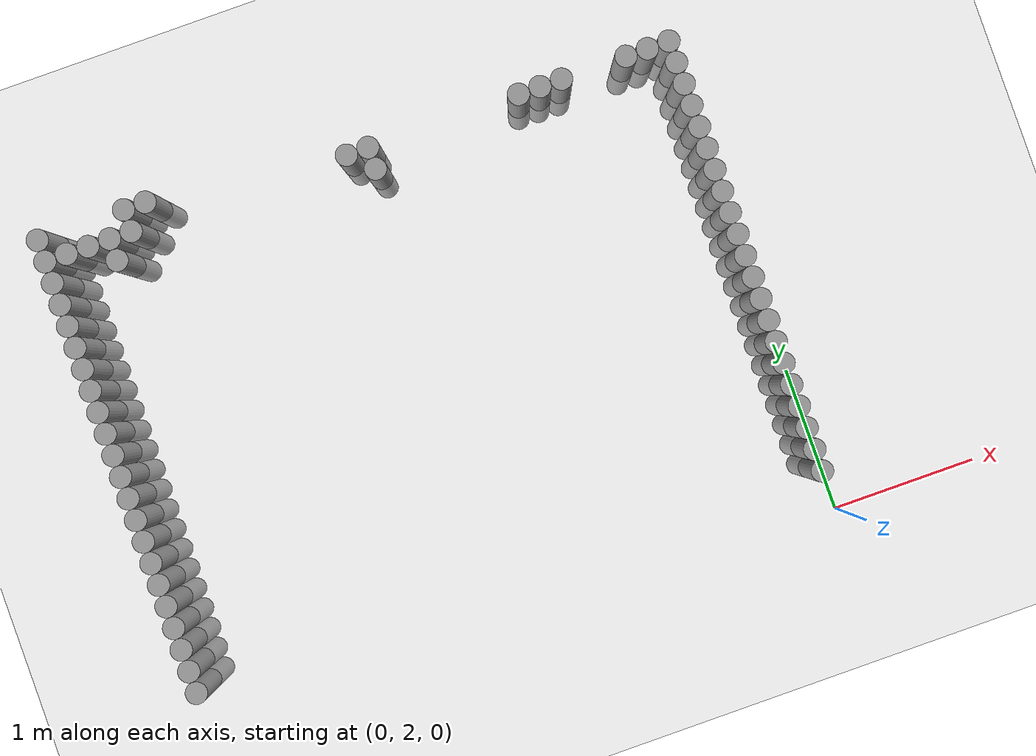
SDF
<sdf version="1.6">
 <world name="default">
  <model name="ground_plane">
   <static>1</static>
   <link name="link">
    <collision name="collision">
     <geometry><plane><normal>0 0 1</normal><size>100 100</size></plane></geometry>
     <surface><friction><ode><mu>100</mu><mu2>50</mu2></ode></friction></surface>
    </collision>
    <visual name="visual">
     <cast_shadows>0</cast_shadows>
     <geometry><plane><normal>0 0 1</normal><size>100 100</size></plane></geometry>
     <material>
      <script><uri>file://media/materials/scripts/gazebo.material</uri><name>Gazebo/Grey</name></script>
     </material>
    </visual>
   </link>
  </model>
  <model name="unit_cylinder_58">
   <pose>-0.075000 2.325000 0.000000 0.000000 0.000000 0.000000</pose>
   <link name="link">
    <inertial>
     <mass>1</mass>
     <inertia><ixx>0.145833</ixx><ixy>0</ixy><ixz>0</ixz><iyy>0.145833</iyy><iyz>0</iyz><izz>0.125</izz></inertia>
    </inertial>
    <collision name="collision">
     <geometry><cylinder><radius>0.075000</radius><length>1</length></cylinder></geometry>
    </collision>
    <visual name="visual">
     <geometry><cylinder><radius>0.075000</radius><length>1</length></cylinder></geometry>
     <material>
      <script><name>Gazebo/Grey</name><uri>file://media/materials/scripts/gazebo.material</uri></script>
     </material>
    </visual>
   </link>
  </model>
  <model name="unit_cylinder_59">
   <pose>-4.425000 2.325000 0.000000 0.000000 0.000000 0.000000</pose>
   <link name="link">
    <inertial>
     <mass>1</mass>
     <inertia><ixx>0.145833</ixx><ixy>0</ixy><ixz>0</ixz><iyy>0.145833</iyy><iyz>0</iyz><izz>0.125</izz></inertia>
    </inertial>
    <collision name="collision">
     <geometry><cylinder><radius>0.075000</radius><length>1</length></cylinder></geometry>
    </collision>
    <visual name="visual">
     <geometry><cylinder><radius>0.075000</radius><length>1</length></cylinder></geometry>
     <material>
      <script><name>Gazebo/Grey</name><uri>file://media/materials/scripts/gazebo.material</uri></script>
     </material>
    </visual>
   </link>
  </model>
  <model name="unit_cylinder_60">
   <pose>-0.075000 2.475000 0.000000 0.000000 0.000000 0.000000</pose>
   <link name="link">
    <inertial>
     <mass>1</mass>
     <inertia><ixx>0.145833</ixx><ixy>0</ixy><ixz>0</ixz><iyy>0.145833</iyy><iyz>0</iyz><izz>0.125</izz></inertia>
    </inertial>
    <collision name="collision">
     <geometry><cylinder><radius>0.075000</radius><length>1</length></cylinder></geometry>
    </collision>
    <visual name="visual">
     <geometry><cylinder><radius>0.075000</radius><length>1</length></cylinder></geometry>
     <material>
      <script><name>Gazebo/Grey</name><uri>file://media/materials/scripts/gazebo.material</uri></script>
     </material>
    </visual>
   </link>
  </model>
  <model name="unit_cylinder_61">
   <pose>-4.425000 2.475000 0.000000 0.000000 0.000000 0.000000</pose>
   <link name="link">
    <inertial>
     <mass>1</mass>
     <inertia><ixx>0.145833</ixx><ixy>0</ixy><ixz>0</ixz><iyy>0.145833</iyy><iyz>0</iyz><izz>0.125</izz></inertia>
    </inertial>
    <collision name="collision">
     <geometry><cylinder><radius>0.075000</radius><length>1</length></cylinder></geometry>
    </collision>
    <visual name="visual">
     <geometry><cylinder><radius>0.075000</radius><length>1</length></cylinder></geometry>
     <material>
      <script><name>Gazebo/Grey</name><uri>file://media/materials/scripts/gazebo.material</uri></script>
     </material>
    </visual>
   </link>
  </model>
  <model name="unit_cylinder_62">
   <pose>-0.075000 2.625000 0.000000 0.000000 0.000000 0.000000</pose>
   <link name="link">
    <inertial>
     <mass>1</mass>
     <inertia><ixx>0.145833</ixx><ixy>0</ixy><ixz>0</ixz><iyy>0.145833</iyy><iyz>0</iyz><izz>0.125</izz></inertia>
    </inertial>
    <collision name="collision">
     <geometry><cylinder><radius>0.075000</radius><length>1</length></cylinder></geometry>
    </collision>
    <visual name="visual">
     <geometry><cylinder><radius>0.075000</radius><length>1</length></cylinder></geometry>
     <material>
      <script><name>Gazebo/Grey</name><uri>file://media/materials/scripts/gazebo.material</uri></script>
     </material>
    </visual>
   </link>
  </model>
  <model name="unit_cylinder_63">
   <pose>-4.425000 2.625000 0.000000 0.000000 0.000000 0.000000</pose>
   <link name="link">
    <inertial>
     <mass>1</mass>
     <inertia><ixx>0.145833</ixx><ixy>0</ixy><ixz>0</ixz><iyy>0.145833</iyy><iyz>0</iyz><izz>0.125</izz></inertia>
    </inertial>
    <collision name="collision">
     <geometry><cylinder><radius>0.075000</radius><length>1</length></cylinder></geometry>
    </collision>
    <visual name="visual">
     <geometry><cylinder><radius>0.075000</radius><length>1</length></cylinder></geometry>
     <material>
      <script><name>Gazebo/Grey</name><uri>file://media/materials/scripts/gazebo.material</uri></script>
     </material>
    </visual>
   </link>
  </model>
  <model name="unit_cylinder_64">
   <pose>-0.075000 2.775000 0.000000 0.000000 0.000000 0.000000</pose>
   <link name="link">
    <inertial>
     <mass>1</mass>
     <inertia><ixx>0.145833</ixx><ixy>0</ixy><ixz>0</ixz><iyy>0.145833</iyy><iyz>0</iyz><izz>0.125</izz></inertia>
    </inertial>
    <collision name="collision">
     <geometry><cylinder><radius>0.075000</radius><length>1</length></cylinder></geometry>
    </collision>
    <visual name="visual">
     <geometry><cylinder><radius>0.075000</radius><length>1</length></cylinder></geometry>
     <material>
      <script><name>Gazebo/Grey</name><uri>file://media/materials/scripts/gazebo.material</uri></script>
     </material>
    </visual>
   </link>
  </model>
  <model name="unit_cylinder_65">
   <pose>-4.425000 2.775000 0.000000 0.000000 0.000000 0.000000</pose>
   <link name="link">
    <inertial>
     <mass>1</mass>
     <inertia><ixx>0.145833</ixx><ixy>0</ixy><ixz>0</ixz><iyy>0.145833</iyy><iyz>0</iyz><izz>0.125</izz></inertia>
    </inertial>
    <collision name="collision">
     <geometry><cylinder><radius>0.075000</radius><length>1</length></cylinder></geometry>
    </collision>
    <visual name="visual">
     <geometry><cylinder><radius>0.075000</radius><length>1</length></cylinder></geometry>
     <material>
      <script><name>Gazebo/Grey</name><uri>file://media/materials/scripts/gazebo.material</uri></script>
     </material>
    </visual>
   </link>
  </model>
  <model name="unit_cylinder_66">
   <pose>-0.075000 2.925000 0.000000 0.000000 0.000000 0.000000</pose>
   <link name="link">
    <inertial>
     <mass>1</mass>
     <inertia><ixx>0.145833</ixx><ixy>0</ixy><ixz>0</ixz><iyy>0.145833</iyy><iyz>0</iyz><izz>0.125</izz></inertia>
    </inertial>
    <collision name="collision">
     <geometry><cylinder><radius>0.075000</radius><length>1</length></cylinder></geometry>
    </collision>
    <visual name="visual">
     <geometry><cylinder><radius>0.075000</radius><length>1</length></cylinder></geometry>
     <material>
      <script><name>Gazebo/Grey</name><uri>file://media/materials/scripts/gazebo.material</uri></script>
     </material>
    </visual>
   </link>
  </model>
  <model name="unit_cylinder_67">
   <pose>-4.425000 2.925000 0.000000 0.000000 0.000000 0.000000</pose>
   <link name="link">
    <inertial>
     <mass>1</mass>
     <inertia><ixx>0.145833</ixx><ixy>0</ixy><ixz>0</ixz><iyy>0.145833</iyy><iyz>0</iyz><izz>0.125</izz></inertia>
    </inertial>
    <collision name="collision">
     <geometry><cylinder><radius>0.075000</radius><length>1</length></cylinder></geometry>
    </collision>
    <visual name="visual">
     <geometry><cylinder><radius>0.075000</radius><length>1</length></cylinder></geometry>
     <material>
      <script><name>Gazebo/Grey</name><uri>file://media/materials/scripts/gazebo.material</uri></script>
     </material>
    </visual>
   </link>
  </model>
  <model name="unit_cylinder_68">
   <pose>-0.075000 3.075000 0.000000 0.000000 0.000000 0.000000</pose>
   <link name="link">
    <inertial>
     <mass>1</mass>
     <inertia><ixx>0.145833</ixx><ixy>0</ixy><ixz>0</ixz><iyy>0.145833</iyy><iyz>0</iyz><izz>0.125</izz></inertia>
    </inertial>
    <collision name="collision">
     <geometry><cylinder><radius>0.075000</radius><length>1</length></cylinder></geometry>
    </collision>
    <visual name="visual">
     <geometry><cylinder><radius>0.075000</radius><length>1</length></cylinder></geometry>
     <material>
      <script><name>Gazebo/Grey</name><uri>file://media/materials/scripts/gazebo.material</uri></script>
     </material>
    </visual>
   </link>
  </model>
  <model name="unit_cylinder_69">
   <pose>-4.425000 3.075000 0.000000 0.000000 0.000000 0.000000</pose>
   <link name="link">
    <inertial>
     <mass>1</mass>
     <inertia><ixx>0.145833</ixx><ixy>0</ixy><ixz>0</ixz><iyy>0.145833</iyy><iyz>0</iyz><izz>0.125</izz></inertia>
    </inertial>
    <collision name="collision">
     <geometry><cylinder><radius>0.075000</radius><length>1</length></cylinder></geometry>
    </collision>
    <visual name="visual">
     <geometry><cylinder><radius>0.075000</radius><length>1</length></cylinder></geometry>
     <material>
      <script><name>Gazebo/Grey</name><uri>file://media/materials/scripts/gazebo.material</uri></script>
     </material>
    </visual>
   </link>
  </model>
  <model name="unit_cylinder_70">
   <pose>-0.075000 3.225000 0.000000 0.000000 0.000000 0.000000</pose>
   <link name="link">
    <inertial>
     <mass>1</mass>
     <inertia><ixx>0.145833</ixx><ixy>0</ixy><ixz>0</ixz><iyy>0.145833</iyy><iyz>0</iyz><izz>0.125</izz></inertia>
    </inertial>
    <collision name="collision">
     <geometry><cylinder><radius>0.075000</radius><length>1</length></cylinder></geometry>
    </collision>
    <visual name="visual">
     <geometry><cylinder><radius>0.075000</radius><length>1</length></cylinder></geometry>
     <material>
      <script><name>Gazebo/Grey</name><uri>file://media/materials/scripts/gazebo.material</uri></script>
     </material>
    </visual>
   </link>
  </model>
  <model name="unit_cylinder_71">
   <pose>-4.425000 3.225000 0.000000 0.000000 0.000000 0.000000</pose>
   <link name="link">
    <inertial>
     <mass>1</mass>
     <inertia><ixx>0.145833</ixx><ixy>0</ixy><ixz>0</ixz><iyy>0.145833</iyy><iyz>0</iyz><izz>0.125</izz></inertia>
    </inertial>
    <collision name="collision">
     <geometry><cylinder><radius>0.075000</radius><length>1</length></cylinder></geometry>
    </collision>
    <visual name="visual">
     <geometry><cylinder><radius>0.075000</radius><length>1</length></cylinder></geometry>
     <material>
      <script><name>Gazebo/Grey</name><uri>file://media/materials/scripts/gazebo.material</uri></script>
     </material>
    </visual>
   </link>
  </model>
  <model name="unit_cylinder_72">
   <pose>-0.075000 3.375000 0.000000 0.000000 0.000000 0.000000</pose>
   <link name="link">
    <inertial>
     <mass>1</mass>
     <inertia><ixx>0.145833</ixx><ixy>0</ixy><ixz>0</ixz><iyy>0.145833</iyy><iyz>0</iyz><izz>0.125</izz></inertia>
    </inertial>
    <collision name="collision">
     <geometry><cylinder><radius>0.075000</radius><length>1</length></cylinder></geometry>
    </collision>
    <visual name="visual">
     <geometry><cylinder><radius>0.075000</radius><length>1</length></cylinder></geometry>
     <material>
      <script><name>Gazebo/Grey</name><uri>file://media/materials/scripts/gazebo.material</uri></script>
     </material>
    </visual>
   </link>
  </model>
  <model name="unit_cylinder_73">
   <pose>-4.425000 3.375000 0.000000 0.000000 0.000000 0.000000</pose>
   <link name="link">
    <inertial>
     <mass>1</mass>
     <inertia><ixx>0.145833</ixx><ixy>0</ixy><ixz>0</ixz><iyy>0.145833</iyy><iyz>0</iyz><izz>0.125</izz></inertia>
    </inertial>
    <collision name="collision">
     <geometry><cylinder><radius>0.075000</radius><length>1</length></cylinder></geometry>
    </collision>
    <visual name="visual">
     <geometry><cylinder><radius>0.075000</radius><length>1</length></cylinder></geometry>
     <material>
      <script><name>Gazebo/Grey</name><uri>file://media/materials/scripts/gazebo.material</uri></script>
     </material>
    </visual>
   </link>
  </model>
  <model name="unit_cylinder_74">
   <pose>-0.075000 3.525000 0.000000 0.000000 0.000000 0.000000</pose>
   <link name="link">
    <inertial>
     <mass>1</mass>
     <inertia><ixx>0.145833</ixx><ixy>0</ixy><ixz>0</ixz><iyy>0.145833</iyy><iyz>0</iyz><izz>0.125</izz></inertia>
    </inertial>
    <collision name="collision">
     <geometry><cylinder><radius>0.075000</radius><length>1</length></cylinder></geometry>
    </collision>
    <visual name="visual">
     <geometry><cylinder><radius>0.075000</radius><length>1</length></cylinder></geometry>
     <material>
      <script><name>Gazebo/Grey</name><uri>file://media/materials/scripts/gazebo.material</uri></script>
     </material>
    </visual>
   </link>
  </model>
  <model name="unit_cylinder_75">
   <pose>-4.425000 3.525000 0.000000 0.000000 0.000000 0.000000</pose>
   <link name="link">
    <inertial>
     <mass>1</mass>
     <inertia><ixx>0.145833</ixx><ixy>0</ixy><ixz>0</ixz><iyy>0.145833</iyy><iyz>0</iyz><izz>0.125</izz></inertia>
    </inertial>
    <collision name="collision">
     <geometry><cylinder><radius>0.075000</radius><length>1</length></cylinder></geometry>
    </collision>
    <visual name="visual">
     <geometry><cylinder><radius>0.075000</radius><length>1</length></cylinder></geometry>
     <material>
      <script><name>Gazebo/Grey</name><uri>file://media/materials/scripts/gazebo.material</uri></script>
     </material>
    </visual>
   </link>
  </model>
  <model name="unit_cylinder_76">
   <pose>-0.075000 3.675000 0.000000 0.000000 0.000000 0.000000</pose>
   <link name="link">
    <inertial>
     <mass>1</mass>
     <inertia><ixx>0.145833</ixx><ixy>0</ixy><ixz>0</ixz><iyy>0.145833</iyy><iyz>0</iyz><izz>0.125</izz></inertia>
    </inertial>
    <collision name="collision">
     <geometry><cylinder><radius>0.075000</radius><length>1</length></cylinder></geometry>
    </collision>
    <visual name="visual">
     <geometry><cylinder><radius>0.075000</radius><length>1</length></cylinder></geometry>
     <material>
      <script><name>Gazebo/Grey</name><uri>file://media/materials/scripts/gazebo.material</uri></script>
     </material>
    </visual>
   </link>
  </model>
  <model name="unit_cylinder_77">
   <pose>-4.425000 3.675000 0.000000 0.000000 0.000000 0.000000</pose>
   <link name="link">
    <inertial>
     <mass>1</mass>
     <inertia><ixx>0.145833</ixx><ixy>0</ixy><ixz>0</ixz><iyy>0.145833</iyy><iyz>0</iyz><izz>0.125</izz></inertia>
    </inertial>
    <collision name="collision">
     <geometry><cylinder><radius>0.075000</radius><length>1</length></cylinder></geometry>
    </collision>
    <visual name="visual">
     <geometry><cylinder><radius>0.075000</radius><length>1</length></cylinder></geometry>
     <material>
      <script><name>Gazebo/Grey</name><uri>file://media/materials/scripts/gazebo.material</uri></script>
     </material>
    </visual>
   </link>
  </model>
  <model name="unit_cylinder_78">
   <pose>-0.075000 3.825000 0.000000 0.000000 0.000000 0.000000</pose>
   <link name="link">
    <inertial>
     <mass>1</mass>
     <inertia><ixx>0.145833</ixx><ixy>0</ixy><ixz>0</ixz><iyy>0.145833</iyy><iyz>0</iyz><izz>0.125</izz></inertia>
    </inertial>
    <collision name="collision">
     <geometry><cylinder><radius>0.075000</radius><length>1</length></cylinder></geometry>
    </collision>
    <visual name="visual">
     <geometry><cylinder><radius>0.075000</radius><length>1</length></cylinder></geometry>
     <material>
      <script><name>Gazebo/Grey</name><uri>file://media/materials/scripts/gazebo.material</uri></script>
     </material>
    </visual>
   </link>
  </model>
  <model name="unit_cylinder_79">
   <pose>-4.425000 3.825000 0.000000 0.000000 0.000000 0.000000</pose>
   <link name="link">
    <inertial>
     <mass>1</mass>
     <inertia><ixx>0.145833</ixx><ixy>0</ixy><ixz>0</ixz><iyy>0.145833</iyy><iyz>0</iyz><izz>0.125</izz></inertia>
    </inertial>
    <collision name="collision">
     <geometry><cylinder><radius>0.075000</radius><length>1</length></cylinder></geometry>
    </collision>
    <visual name="visual">
     <geometry><cylinder><radius>0.075000</radius><length>1</length></cylinder></geometry>
     <material>
      <script><name>Gazebo/Grey</name><uri>file://media/materials/scripts/gazebo.material</uri></script>
     </material>
    </visual>
   </link>
  </model>
  <model name="unit_cylinder_80">
   <pose>-0.075000 3.975000 0.000000 0.000000 0.000000 0.000000</pose>
   <link name="link">
    <inertial>
     <mass>1</mass>
     <inertia><ixx>0.145833</ixx><ixy>0</ixy><ixz>0</ixz><iyy>0.145833</iyy><iyz>0</iyz><izz>0.125</izz></inertia>
    </inertial>
    <collision name="collision">
     <geometry><cylinder><radius>0.075000</radius><length>1</length></cylinder></geometry>
    </collision>
    <visual name="visual">
     <geometry><cylinder><radius>0.075000</radius><length>1</length></cylinder></geometry>
     <material>
      <script><name>Gazebo/Grey</name><uri>file://media/materials/scripts/gazebo.material</uri></script>
     </material>
    </visual>
   </link>
  </model>
  <model name="unit_cylinder_81">
   <pose>-4.425000 3.975000 0.000000 0.000000 0.000000 0.000000</pose>
   <link name="link">
    <inertial>
     <mass>1</mass>
     <inertia><ixx>0.145833</ixx><ixy>0</ixy><ixz>0</ixz><iyy>0.145833</iyy><iyz>0</iyz><izz>0.125</izz></inertia>
    </inertial>
    <collision name="collision">
     <geometry><cylinder><radius>0.075000</radius><length>1</length></cylinder></geometry>
    </collision>
    <visual name="visual">
     <geometry><cylinder><radius>0.075000</radius><length>1</length></cylinder></geometry>
     <material>
      <script><name>Gazebo/Grey</name><uri>file://media/materials/scripts/gazebo.material</uri></script>
     </material>
    </visual>
   </link>
  </model>
  <model name="unit_cylinder_82">
   <pose>-0.075000 4.125000 0.000000 0.000000 0.000000 0.000000</pose>
   <link name="link">
    <inertial>
     <mass>1</mass>
     <inertia><ixx>0.145833</ixx><ixy>0</ixy><ixz>0</ixz><iyy>0.145833</iyy><iyz>0</iyz><izz>0.125</izz></inertia>
    </inertial>
    <collision name="collision">
     <geometry><cylinder><radius>0.075000</radius><length>1</length></cylinder></geometry>
    </collision>
    <visual name="visual">
     <geometry><cylinder><radius>0.075000</radius><length>1</length></cylinder></geometry>
     <material>
      <script><name>Gazebo/Grey</name><uri>file://media/materials/scripts/gazebo.material</uri></script>
     </material>
    </visual>
   </link>
  </model>
  <model name="unit_cylinder_83">
   <pose>-4.425000 4.125000 0.000000 0.000000 0.000000 0.000000</pose>
   <link name="link">
    <inertial>
     <mass>1</mass>
     <inertia><ixx>0.145833</ixx><ixy>0</ixy><ixz>0</ixz><iyy>0.145833</iyy><iyz>0</iyz><izz>0.125</izz></inertia>
    </inertial>
    <collision name="collision">
     <geometry><cylinder><radius>0.075000</radius><length>1</length></cylinder></geometry>
    </collision>
    <visual name="visual">
     <geometry><cylinder><radius>0.075000</radius><length>1</length></cylinder></geometry>
     <material>
      <script><name>Gazebo/Grey</name><uri>file://media/materials/scripts/gazebo.material</uri></script>
     </material>
    </visual>
   </link>
  </model>
  <model name="unit_cylinder_84">
   <pose>-0.075000 4.275000 0.000000 0.000000 0.000000 0.000000</pose>
   <link name="link">
    <inertial>
     <mass>1</mass>
     <inertia><ixx>0.145833</ixx><ixy>0</ixy><ixz>0</ixz><iyy>0.145833</iyy><iyz>0</iyz><izz>0.125</izz></inertia>
    </inertial>
    <collision name="collision">
     <geometry><cylinder><radius>0.075000</radius><length>1</length></cylinder></geometry>
    </collision>
    <visual name="visual">
     <geometry><cylinder><radius>0.075000</radius><length>1</length></cylinder></geometry>
     <material>
      <script><name>Gazebo/Grey</name><uri>file://media/materials/scripts/gazebo.material</uri></script>
     </material>
    </visual>
   </link>
  </model>
  <model name="unit_cylinder_85">
   <pose>-4.425000 4.275000 0.000000 0.000000 0.000000 0.000000</pose>
   <link name="link">
    <inertial>
     <mass>1</mass>
     <inertia><ixx>0.145833</ixx><ixy>0</ixy><ixz>0</ixz><iyy>0.145833</iyy><iyz>0</iyz><izz>0.125</izz></inertia>
    </inertial>
    <collision name="collision">
     <geometry><cylinder><radius>0.075000</radius><length>1</length></cylinder></geometry>
    </collision>
    <visual name="visual">
     <geometry><cylinder><radius>0.075000</radius><length>1</length></cylinder></geometry>
     <material>
      <script><name>Gazebo/Grey</name><uri>file://media/materials/scripts/gazebo.material</uri></script>
     </material>
    </visual>
   </link>
  </model>
  <model name="unit_cylinder_86">
   <pose>-0.075000 4.425000 0.000000 0.000000 0.000000 0.000000</pose>
   <link name="link">
    <inertial>
     <mass>1</mass>
     <inertia><ixx>0.145833</ixx><ixy>0</ixy><ixz>0</ixz><iyy>0.145833</iyy><iyz>0</iyz><izz>0.125</izz></inertia>
    </inertial>
    <collision name="collision">
     <geometry><cylinder><radius>0.075000</radius><length>1</length></cylinder></geometry>
    </collision>
    <visual name="visual">
     <geometry><cylinder><radius>0.075000</radius><length>1</length></cylinder></geometry>
     <material>
      <script><name>Gazebo/Grey</name><uri>file://media/materials/scripts/gazebo.material</uri></script>
     </material>
    </visual>
   </link>
  </model>
  <model name="unit_cylinder_87">
   <pose>-4.425000 4.425000 0.000000 0.000000 0.000000 0.000000</pose>
   <link name="link">
    <inertial>
     <mass>1</mass>
     <inertia><ixx>0.145833</ixx><ixy>0</ixy><ixz>0</ixz><iyy>0.145833</iyy><iyz>0</iyz><izz>0.125</izz></inertia>
    </inertial>
    <collision name="collision">
     <geometry><cylinder><radius>0.075000</radius><length>1</length></cylinder></geometry>
    </collision>
    <visual name="visual">
     <geometry><cylinder><radius>0.075000</radius><length>1</length></cylinder></geometry>
     <material>
      <script><name>Gazebo/Grey</name><uri>file://media/materials/scripts/gazebo.material</uri></script>
     </material>
    </visual>
   </link>
  </model>
  <model name="unit_cylinder_88">
   <pose>-0.075000 4.575000 0.000000 0.000000 0.000000 0.000000</pose>
   <link name="link">
    <inertial>
     <mass>1</mass>
     <inertia><ixx>0.145833</ixx><ixy>0</ixy><ixz>0</ixz><iyy>0.145833</iyy><iyz>0</iyz><izz>0.125</izz></inertia>
    </inertial>
    <collision name="collision">
     <geometry><cylinder><radius>0.075000</radius><length>1</length></cylinder></geometry>
    </collision>
    <visual name="visual">
     <geometry><cylinder><radius>0.075000</radius><length>1</length></cylinder></geometry>
     <material>
      <script><name>Gazebo/Grey</name><uri>file://media/materials/scripts/gazebo.material</uri></script>
     </material>
    </visual>
   </link>
  </model>
  <model name="unit_cylinder_89">
   <pose>-4.425000 4.575000 0.000000 0.000000 0.000000 0.000000</pose>
   <link name="link">
    <inertial>
     <mass>1</mass>
     <inertia><ixx>0.145833</ixx><ixy>0</ixy><ixz>0</ixz><iyy>0.145833</iyy><iyz>0</iyz><izz>0.125</izz></inertia>
    </inertial>
    <collision name="collision">
     <geometry><cylinder><radius>0.075000</radius><length>1</length></cylinder></geometry>
    </collision>
    <visual name="visual">
     <geometry><cylinder><radius>0.075000</radius><length>1</length></cylinder></geometry>
     <material>
      <script><name>Gazebo/Grey</name><uri>file://media/materials/scripts/gazebo.material</uri></script>
     </material>
    </visual>
   </link>
  </model>
  <model name="unit_cylinder_90">
   <pose>-0.075000 4.725000 0.000000 0.000000 0.000000 0.000000</pose>
   <link name="link">
    <inertial>
     <mass>1</mass>
     <inertia><ixx>0.145833</ixx><ixy>0</ixy><ixz>0</ixz><iyy>0.145833</iyy><iyz>0</iyz><izz>0.125</izz></inertia>
    </inertial>
    <collision name="collision">
     <geometry><cylinder><radius>0.075000</radius><length>1</length></cylinder></geometry>
    </collision>
    <visual name="visual">
     <geometry><cylinder><radius>0.075000</radius><length>1</length></cylinder></geometry>
     <material>
      <script><name>Gazebo/Grey</name><uri>file://media/materials/scripts/gazebo.material</uri></script>
     </material>
    </visual>
   </link>
  </model>
  <model name="unit_cylinder_91">
   <pose>-4.425000 4.725000 0.000000 0.000000 0.000000 0.000000</pose>
   <link name="link">
    <inertial>
     <mass>1</mass>
     <inertia><ixx>0.145833</ixx><ixy>0</ixy><ixz>0</ixz><iyy>0.145833</iyy><iyz>0</iyz><izz>0.125</izz></inertia>
    </inertial>
    <collision name="collision">
     <geometry><cylinder><radius>0.075000</radius><length>1</length></cylinder></geometry>
    </collision>
    <visual name="visual">
     <geometry><cylinder><radius>0.075000</radius><length>1</length></cylinder></geometry>
     <material>
      <script><name>Gazebo/Grey</name><uri>file://media/materials/scripts/gazebo.material</uri></script>
     </material>
    </visual>
   </link>
  </model>
  <model name="unit_cylinder_92">
   <pose>-0.075000 4.875000 0.000000 0.000000 0.000000 0.000000</pose>
   <link name="link">
    <inertial>
     <mass>1</mass>
     <inertia><ixx>0.145833</ixx><ixy>0</ixy><ixz>0</ixz><iyy>0.145833</iyy><iyz>0</iyz><izz>0.125</izz></inertia>
    </inertial>
    <collision name="collision">
     <geometry><cylinder><radius>0.075000</radius><length>1</length></cylinder></geometry>
    </collision>
    <visual name="visual">
     <geometry><cylinder><radius>0.075000</radius><length>1</length></cylinder></geometry>
     <material>
      <script><name>Gazebo/Grey</name><uri>file://media/materials/scripts/gazebo.material</uri></script>
     </material>
    </visual>
   </link>
  </model>
  <model name="unit_cylinder_93">
   <pose>-4.425000 4.875000 0.000000 0.000000 0.000000 0.000000</pose>
   <link name="link">
    <inertial>
     <mass>1</mass>
     <inertia><ixx>0.145833</ixx><ixy>0</ixy><ixz>0</ixz><iyy>0.145833</iyy><iyz>0</iyz><izz>0.125</izz></inertia>
    </inertial>
    <collision name="collision">
     <geometry><cylinder><radius>0.075000</radius><length>1</length></cylinder></geometry>
    </collision>
    <visual name="visual">
     <geometry><cylinder><radius>0.075000</radius><length>1</length></cylinder></geometry>
     <material>
      <script><name>Gazebo/Grey</name><uri>file://media/materials/scripts/gazebo.material</uri></script>
     </material>
    </visual>
   </link>
  </model>
  <model name="unit_cylinder_94">
   <pose>-0.075000 5.025000 0.000000 0.000000 0.000000 0.000000</pose>
   <link name="link">
    <inertial>
     <mass>1</mass>
     <inertia><ixx>0.145833</ixx><ixy>0</ixy><ixz>0</ixz><iyy>0.145833</iyy><iyz>0</iyz><izz>0.125</izz></inertia>
    </inertial>
    <collision name="collision">
     <geometry><cylinder><radius>0.075000</radius><length>1</length></cylinder></geometry>
    </collision>
    <visual name="visual">
     <geometry><cylinder><radius>0.075000</radius><length>1</length></cylinder></geometry>
     <material>
      <script><name>Gazebo/Grey</name><uri>file://media/materials/scripts/gazebo.material</uri></script>
     </material>
    </visual>
   </link>
  </model>
  <model name="unit_cylinder_95">
   <pose>-4.425000 5.025000 0.000000 0.000000 0.000000 0.000000</pose>
   <link name="link">
    <inertial>
     <mass>1</mass>
     <inertia><ixx>0.145833</ixx><ixy>0</ixy><ixz>0</ixz><iyy>0.145833</iyy><iyz>0</iyz><izz>0.125</izz></inertia>
    </inertial>
    <collision name="collision">
     <geometry><cylinder><radius>0.075000</radius><length>1</length></cylinder></geometry>
    </collision>
    <visual name="visual">
     <geometry><cylinder><radius>0.075000</radius><length>1</length></cylinder></geometry>
     <material>
      <script><name>Gazebo/Grey</name><uri>file://media/materials/scripts/gazebo.material</uri></script>
     </material>
    </visual>
   </link>
  </model>
  <model name="unit_cylinder_96">
   <pose>-4.425000 5.175000 0.000000 0.000000 0.000000 0.000000</pose>
   <link name="link">
    <inertial>
     <mass>1</mass>
     <inertia><ixx>0.145833</ixx><ixy>0</ixy><ixz>0</ixz><iyy>0.145833</iyy><iyz>0</iyz><izz>0.125</izz></inertia>
    </inertial>
    <collision name="collision">
     <geometry><cylinder><radius>0.075000</radius><length>1</length></cylinder></geometry>
    </collision>
    <visual name="visual">
     <geometry><cylinder><radius>0.075000</radius><length>1</length></cylinder></geometry>
     <material>
      <script><name>Gazebo/Grey</name><uri>file://media/materials/scripts/gazebo.material</uri></script>
     </material>
    </visual>
   </link>
  </model>
  <model name="unit_cylinder_97">
   <pose>-4.425000 5.325000 0.000000 0.000000 0.000000 0.000000</pose>
   <link name="link">
    <inertial>
     <mass>1</mass>
     <inertia><ixx>0.145833</ixx><ixy>0</ixy><ixz>0</ixz><iyy>0.145833</iyy><iyz>0</iyz><izz>0.125</izz></inertia>
    </inertial>
    <collision name="collision">
     <geometry><cylinder><radius>0.075000</radius><length>1</length></cylinder></geometry>
    </collision>
    <visual name="visual">
     <geometry><cylinder><radius>0.075000</radius><length>1</length></cylinder></geometry>
     <material>
      <script><name>Gazebo/Grey</name><uri>file://media/materials/scripts/gazebo.material</uri></script>
     </material>
    </visual>
   </link>
  </model>
  <model name="unit_cylinder_98">
   <pose>-4.425000 5.475000 0.000000 0.000000 0.000000 0.000000</pose>
   <link name="link">
    <inertial>
     <mass>1</mass>
     <inertia><ixx>0.145833</ixx><ixy>0</ixy><ixz>0</ixz><iyy>0.145833</iyy><iyz>0</iyz><izz>0.125</izz></inertia>
    </inertial>
    <collision name="collision">
     <geometry><cylinder><radius>0.075000</radius><length>1</length></cylinder></geometry>
    </collision>
    <visual name="visual">
     <geometry><cylinder><radius>0.075000</radius><length>1</length></cylinder></geometry>
     <material>
      <script><name>Gazebo/Grey</name><uri>file://media/materials/scripts/gazebo.material</uri></script>
     </material>
    </visual>
   </link>
  </model>
  <model name="unit_cylinder_126">
   <pose>-4.275000 5.325000 0.000000 0.000000 0.000000 0.000000</pose>
   <link name="link">
    <inertial>
     <mass>1</mass>
     <inertia><ixx>0.145833</ixx><ixy>0</ixy><ixz>0</ixz><iyy>0.145833</iyy><iyz>0</iyz><izz>0.125</izz></inertia>
    </inertial>
    <collision name="collision">
     <geometry><cylinder><radius>0.075000</radius><length>1</length></cylinder></geometry>
    </collision>
    <visual name="visual">
     <geometry><cylinder><radius>0.075000</radius><length>1</length></cylinder></geometry>
     <material>
      <script><name>Gazebo/Grey</name><uri>file://media/materials/scripts/gazebo.material</uri></script>
     </material>
    </visual>
   </link>
  </model>
  <model name="unit_cylinder_141">
   <pose>-4.125000 5.325000 0.000000 0.000000 0.000000 0.000000</pose>
   <link name="link">
    <inertial>
     <mass>1</mass>
     <inertia><ixx>0.145833</ixx><ixy>0</ixy><ixz>0</ixz><iyy>0.145833</iyy><iyz>0</iyz><izz>0.125</izz></inertia>
    </inertial>
    <collision name="collision">
     <geometry><cylinder><radius>0.075000</radius><length>1</length></cylinder></geometry>
    </collision>
    <visual name="visual">
     <geometry><cylinder><radius>0.075000</radius><length>1</length></cylinder></geometry>
     <material>
      <script><name>Gazebo/Grey</name><uri>file://media/materials/scripts/gazebo.material</uri></script>
     </material>
    </visual>
   </link>
  </model>
  <model name="unit_cylinder_149">
   <pose>-3.975000 5.175000 0.000000 0.000000 0.000000 0.000000</pose>
   <link name="link">
    <inertial>
     <mass>1</mass>
     <inertia><ixx>0.145833</ixx><ixy>0</ixy><ixz>0</ixz><iyy>0.145833</iyy><iyz>0</iyz><izz>0.125</izz></inertia>
    </inertial>
    <collision name="collision">
     <geometry><cylinder><radius>0.075000</radius><length>1</length></cylinder></geometry>
    </collision>
    <visual name="visual">
     <geometry><cylinder><radius>0.075000</radius><length>1</length></cylinder></geometry>
     <material>
      <script><name>Gazebo/Grey</name><uri>file://media/materials/scripts/gazebo.material</uri></script>
     </material>
    </visual>
   </link>
  </model>
  <model name="unit_cylinder_150">
   <pose>-3.975000 5.325000 0.000000 0.000000 0.000000 0.000000</pose>
   <link name="link">
    <inertial>
     <mass>1</mass>
     <inertia><ixx>0.145833</ixx><ixy>0</ixy><ixz>0</ixz><iyy>0.145833</iyy><iyz>0</iyz><izz>0.125</izz></inertia>
    </inertial>
    <collision name="collision">
     <geometry><cylinder><radius>0.075000</radius><length>1</length></cylinder></geometry>
    </collision>
    <visual name="visual">
     <geometry><cylinder><radius>0.075000</radius><length>1</length></cylinder></geometry>
     <material>
      <script><name>Gazebo/Grey</name><uri>file://media/materials/scripts/gazebo.material</uri></script>
     </material>
    </visual>
   </link>
  </model>
  <model name="unit_cylinder_162">
   <pose>-3.825000 5.325000 0.000000 0.000000 0.000000 0.000000</pose>
   <link name="link">
    <inertial>
     <mass>1</mass>
     <inertia><ixx>0.145833</ixx><ixy>0</ixy><ixz>0</ixz><iyy>0.145833</iyy><iyz>0</iyz><izz>0.125</izz></inertia>
    </inertial>
    <collision name="collision">
     <geometry><cylinder><radius>0.075000</radius><length>1</length></cylinder></geometry>
    </collision>
    <visual name="visual">
     <geometry><cylinder><radius>0.075000</radius><length>1</length></cylinder></geometry>
     <material>
      <script><name>Gazebo/Grey</name><uri>file://media/materials/scripts/gazebo.material</uri></script>
     </material>
    </visual>
   </link>
  </model>
  <model name="unit_cylinder_163">
   <pose>-3.825000 5.475000 0.000000 0.000000 0.000000 0.000000</pose>
   <link name="link">
    <inertial>
     <mass>1</mass>
     <inertia><ixx>0.145833</ixx><ixy>0</ixy><ixz>0</ixz><iyy>0.145833</iyy><iyz>0</iyz><izz>0.125</izz></inertia>
    </inertial>
    <collision name="collision">
     <geometry><cylinder><radius>0.075000</radius><length>1</length></cylinder></geometry>
    </collision>
    <visual name="visual">
     <geometry><cylinder><radius>0.075000</radius><length>1</length></cylinder></geometry>
     <material>
      <script><name>Gazebo/Grey</name><uri>file://media/materials/scripts/gazebo.material</uri></script>
     </material>
    </visual>
   </link>
  </model>
  <model name="unit_cylinder_169">
   <pose>-3.675000 5.475000 0.000000 0.000000 0.000000 0.000000</pose>
   <link name="link">
    <inertial>
     <mass>1</mass>
     <inertia><ixx>0.145833</ixx><ixy>0</ixy><ixz>0</ixz><iyy>0.145833</iyy><iyz>0</iyz><izz>0.125</izz></inertia>
    </inertial>
    <collision name="collision">
     <geometry><cylinder><radius>0.075000</radius><length>1</length></cylinder></geometry>
    </collision>
    <visual name="visual">
     <geometry><cylinder><radius>0.075000</radius><length>1</length></cylinder></geometry>
     <material>
      <script><name>Gazebo/Grey</name><uri>file://media/materials/scripts/gazebo.material</uri></script>
     </material>
    </visual>
   </link>
  </model>
  <model name="unit_cylinder_204">
   <pose>-2.325000 5.325000 0.000000 0.000000 0.000000 0.000000</pose>
   <link name="link">
    <inertial>
     <mass>1</mass>
     <inertia><ixx>0.145833</ixx><ixy>0</ixy><ixz>0</ixz><iyy>0.145833</iyy><iyz>0</iyz><izz>0.125</izz></inertia>
    </inertial>
    <collision name="collision">
     <geometry><cylinder><radius>0.075000</radius><length>1</length></cylinder></geometry>
    </collision>
    <visual name="visual">
     <geometry><cylinder><radius>0.075000</radius><length>1</length></cylinder></geometry>
     <material>
      <script><name>Gazebo/Grey</name><uri>file://media/materials/scripts/gazebo.material</uri></script>
     </material>
    </visual>
   </link>
  </model>
  <model name="unit_cylinder_205">
   <pose>-2.175000 5.175000 0.000000 0.000000 0.000000 0.000000</pose>
   <link name="link">
    <inertial>
     <mass>1</mass>
     <inertia><ixx>0.145833</ixx><ixy>0</ixy><ixz>0</ixz><iyy>0.145833</iyy><iyz>0</iyz><izz>0.125</izz></inertia>
    </inertial>
    <collision name="collision">
     <geometry><cylinder><radius>0.075000</radius><length>1</length></cylinder></geometry>
    </collision>
    <visual name="visual">
     <geometry><cylinder><radius>0.075000</radius><length>1</length></cylinder></geometry>
     <material>
      <script><name>Gazebo/Grey</name><uri>file://media/materials/scripts/gazebo.material</uri></script>
     </material>
    </visual>
   </link>
  </model>
  <model name="unit_cylinder_206">
   <pose>-2.175000 5.325000 0.000000 0.000000 0.000000 0.000000</pose>
   <link name="link">
    <inertial>
     <mass>1</mass>
     <inertia><ixx>0.145833</ixx><ixy>0</ixy><ixz>0</ixz><iyy>0.145833</iyy><iyz>0</iyz><izz>0.125</izz></inertia>
    </inertial>
    <collision name="collision">
     <geometry><cylinder><radius>0.075000</radius><length>1</length></cylinder></geometry>
    </collision>
    <visual name="visual">
     <geometry><cylinder><radius>0.075000</radius><length>1</length></cylinder></geometry>
     <material>
      <script><name>Gazebo/Grey</name><uri>file://media/materials/scripts/gazebo.material</uri></script>
     </material>
    </visual>
   </link>
  </model>
  <model name="unit_cylinder_220">
   <pose>-1.125000 5.325000 0.000000 0.000000 0.000000 0.000000</pose>
   <link name="link">
    <inertial>
     <mass>1</mass>
     <inertia><ixx>0.145833</ixx><ixy>0</ixy><ixz>0</ixz><iyy>0.145833</iyy><iyz>0</iyz><izz>0.125</izz></inertia>
    </inertial>
    <collision name="collision">
     <geometry><cylinder><radius>0.075000</radius><length>1</length></cylinder></geometry>
    </collision>
    <visual name="visual">
     <geometry><cylinder><radius>0.075000</radius><length>1</length></cylinder></geometry>
     <material>
      <script><name>Gazebo/Grey</name><uri>file://media/materials/scripts/gazebo.material</uri></script>
     </material>
    </visual>
   </link>
  </model>
  <model name="unit_cylinder_222">
   <pose>-0.975000 5.325000 0.000000 0.000000 0.000000 0.000000</pose>
   <link name="link">
    <inertial>
     <mass>1</mass>
     <inertia><ixx>0.145833</ixx><ixy>0</ixy><ixz>0</ixz><iyy>0.145833</iyy><iyz>0</iyz><izz>0.125</izz></inertia>
    </inertial>
    <collision name="collision">
     <geometry><cylinder><radius>0.075000</radius><length>1</length></cylinder></geometry>
    </collision>
    <visual name="visual">
     <geometry><cylinder><radius>0.075000</radius><length>1</length></cylinder></geometry>
     <material>
      <script><name>Gazebo/Grey</name><uri>file://media/materials/scripts/gazebo.material</uri></script>
     </material>
    </visual>
   </link>
  </model>
  <model name="unit_cylinder_226">
   <pose>-0.825000 5.325000 0.000000 0.000000 0.000000 0.000000</pose>
   <link name="link">
    <inertial>
     <mass>1</mass>
     <inertia><ixx>0.145833</ixx><ixy>0</ixy><ixz>0</ixz><iyy>0.145833</iyy><iyz>0</iyz><izz>0.125</izz></inertia>
    </inertial>
    <collision name="collision">
     <geometry><cylinder><radius>0.075000</radius><length>1</length></cylinder></geometry>
    </collision>
    <visual name="visual">
     <geometry><cylinder><radius>0.075000</radius><length>1</length></cylinder></geometry>
     <material>
      <script><name>Gazebo/Grey</name><uri>file://media/materials/scripts/gazebo.material</uri></script>
     </material>
    </visual>
   </link>
  </model>
  <model name="unit_cylinder_242">
   <pose>-0.375000 5.325000 0.000000 0.000000 0.000000 0.000000</pose>
   <link name="link">
    <inertial>
     <mass>1</mass>
     <inertia><ixx>0.145833</ixx><ixy>0</ixy><ixz>0</ixz><iyy>0.145833</iyy><iyz>0</iyz><izz>0.125</izz></inertia>
    </inertial>
    <collision name="collision">
     <geometry><cylinder><radius>0.075000</radius><length>1</length></cylinder></geometry>
    </collision>
    <visual name="visual">
     <geometry><cylinder><radius>0.075000</radius><length>1</length></cylinder></geometry>
     <material>
      <script><name>Gazebo/Grey</name><uri>file://media/materials/scripts/gazebo.material</uri></script>
     </material>
    </visual>
   </link>
  </model>
  <model name="unit_cylinder_247">
   <pose>-0.225000 5.325000 0.000000 0.000000 0.000000 0.000000</pose>
   <link name="link">
    <inertial>
     <mass>1</mass>
     <inertia><ixx>0.145833</ixx><ixy>0</ixy><ixz>0</ixz><iyy>0.145833</iyy><iyz>0</iyz><izz>0.125</izz></inertia>
    </inertial>
    <collision name="collision">
     <geometry><cylinder><radius>0.075000</radius><length>1</length></cylinder></geometry>
    </collision>
    <visual name="visual">
     <geometry><cylinder><radius>0.075000</radius><length>1</length></cylinder></geometry>
     <material>
      <script><name>Gazebo/Grey</name><uri>file://media/materials/scripts/gazebo.material</uri></script>
     </material>
    </visual>
   </link>
  </model>
  <model name="unit_cylinder_260">
   <pose>-0.075000 5.175000 0.000000 0.000000 0.000000 0.000000</pose>
   <link name="link">
    <inertial>
     <mass>1</mass>
     <inertia><ixx>0.145833</ixx><ixy>0</ixy><ixz>0</ixz><iyy>0.145833</iyy><iyz>0</iyz><izz>0.125</izz></inertia>
    </inertial>
    <collision name="collision">
     <geometry><cylinder><radius>0.075000</radius><length>1</length></cylinder></geometry>
    </collision>
    <visual name="visual">
     <geometry><cylinder><radius>0.075000</radius><length>1</length></cylinder></geometry>
     <material>
      <script><name>Gazebo/Grey</name><uri>file://media/materials/scripts/gazebo.material</uri></script>
     </material>
    </visual>
   </link>
  </model>
  <model name="unit_cylinder_261">
   <pose>-0.075000 5.325000 0.000000 0.000000 0.000000 0.000000</pose>
   <link name="link">
    <inertial>
     <mass>1</mass>
     <inertia><ixx>0.145833</ixx><ixy>0</ixy><ixz>0</ixz><iyy>0.145833</iyy><iyz>0</iyz><izz>0.125</izz></inertia>
    </inertial>
    <collision name="collision">
     <geometry><cylinder><radius>0.075000</radius><length>1</length></cylinder></geometry>
    </collision>
    <visual name="visual">
     <geometry><cylinder><radius>0.075000</radius><length>1</length></cylinder></geometry>
     <material>
      <script><name>Gazebo/Grey</name><uri>file://media/materials/scripts/gazebo.material</uri></script>
     </material>
    </visual>
   </link>
  </model>
 </world>
</sdf>
